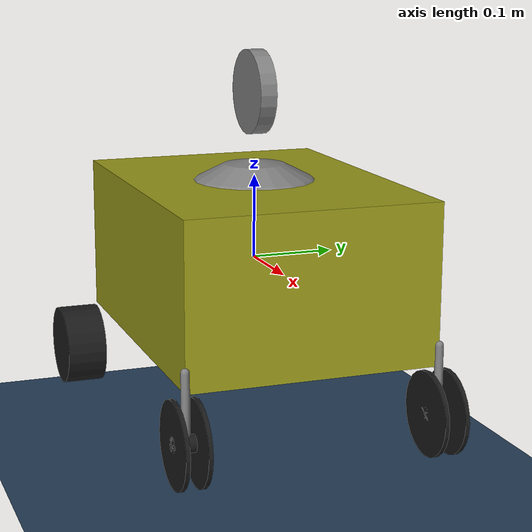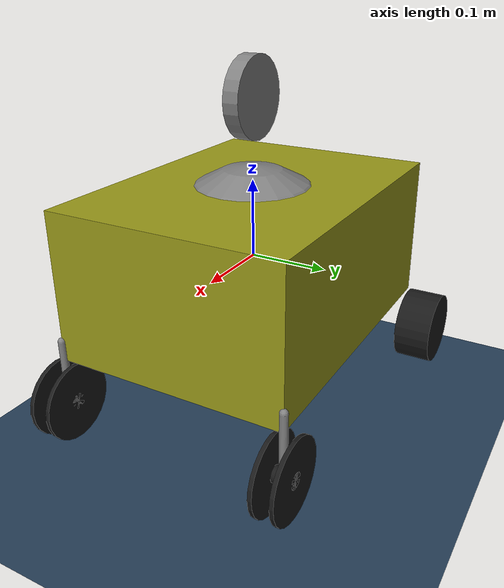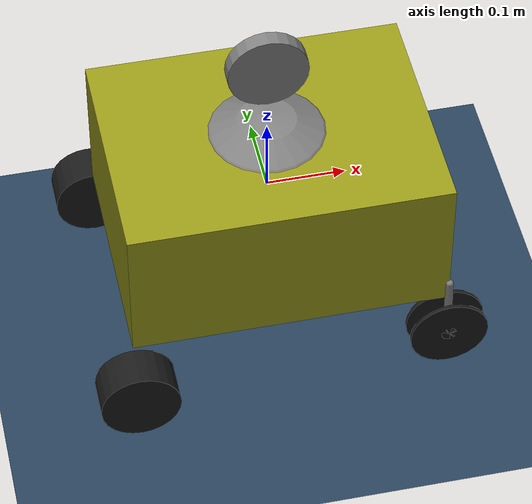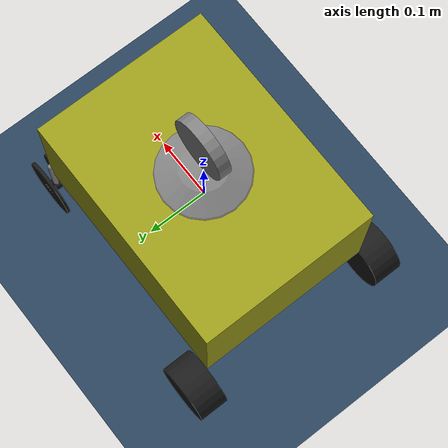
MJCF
<mujoco model="rover4We-field (v0.1)">

	<include file="rover4We-only.xml"/>

	<asset>
		<texture name="floor_tex" type="2d" builtin="checker" rgb1=".2 .3 .4" rgb2=".1 .2 .3" width="100" height="100" />
		<material name="floor_material" texture="floor_tex" texuniform="true" />
	</asset>

	<worldbody>
		<geom name="ground" type="plane" size="20 20 1" pos="0 0 -.25" material="floor_material"/>
	</worldbody>
</mujoco>

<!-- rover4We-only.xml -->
<mujoco model="rover4We (v0.2)">

    <compiler inertiafromgeom="true" angle="degree"/>
	<option	timestep="0.02" gravity="0 0 -9.81"/>

	<asset>
		<material name="MatWheel" specular="1" rgba=".1 .1 .1 1"/>
		<material name="MatBody" specular="1" rgba=".6 .6 .1 1"/>
	</asset>

	<default>
		<geom contype="1" conaffinity="1"/>
	</default>

	<default class="acker_solver_param">
		<equality solimp="0.9950 0.9990 0.0001" solref="0.0100 0.7500"/>
	</default>

    <worldbody>
		<body name="rover" pos="0 0 0">

			<light name="lamp" active="true" directional="true" cutoff="4" exponent="20" diffuse="1 1 1" specular="0 0 0" pos="0 0 2.5" dir="0 0 -1 "/>

			<joint name="centroid" type="free" pos="0 0 0"/>
            <geom name="rover-body" type="box" pos="0 0 0" size="0.2 0.15 .095" mass="12" material="MatBody"/>
            <site name="center-of-mass" pos="0 0 0" size=".12"/>
            <body name="r-l-wheel" pos="-0.2 0.15 -0.15">
                <joint name="r-l-drive-hinge" type="hinge" pos="0 0 0" axis="0 1 0" damping="0.01" />
                <geom type="cylinder" size=".05" fromto="0 0 0 0 0.05 0" mass=".125" material="MatWheel" condim="4"/>
            </body>
            <body name="r-r-wheel" pos="-0.2 -0.15 -0.15">
                <joint name="r-r-drive-hinge" type="hinge" pos="0 0 0" axis="0 1 0" damping="0.01"/>
                <geom type="cylinder" size=".05" fromto="0 0 0 0 -0.05 0" mass=".125" material="MatWheel" condim="4"/>
            </body>
			<body name="ghost-steer-wheel" pos="0 0 .2">
                <joint name="ghost-steer-hinge" type="hinge" pos="0 0 0" axis="0 0 1" limited="true" range="-17 17" damping="0"/>
				<geom type="cylinder" size=".05 .01" axisangle="1 0 0 90" contype="2" conaffinity="2" mass="0.002"/>
			</body>
			<body name="f-l-wheel" pos=".2 0.15 -.15">
				<geom type="capsule" size = ".005" fromto="0 0 0 0 0 .08" contype="2" conaffinity="2"/>
				<joint name="f-l-steer-hinge" type="hinge" pos="0 0 0" axis="0 0 1" damping="0.01" limited="true" range="-40 40"/>
				<body>
					<geom type="cylinder" size=".01" fromto="0 -.015 0 0 0.015 0" mass=".125" material="MatWheel"/>
					<body>
						<joint name="f-l-drive-hinge-1" type="hinge" pos="0 0 0" axis="0 1 0" damping="0.01"/>
						<geom type="cylinder" size=".05" fromto="0 -.015 0 0 -0.010 0" mass=".125" material="MatWheel" condim="4"/>
					</body>
					<body>
						<joint name="f-l-drive-hinge-2" type="hinge" pos="0 0 0" axis="0 1 0" damping="0.01"/>
						<geom type="cylinder" size=".05" fromto="0 .010 0 0 0.015 0" mass=".125" material="MatWheel" condim="4"/>
					</body>
				</body>
			</body>
			<body name="f-r-wheel" pos=".2 -0.15 -.15">
				<geom type="capsule" size = ".005" fromto="0 0 0 0 0 .08" contype="2" conaffinity="2"/>
				<joint name="f-r-steer-hinge" type="hinge" pos="0 0 0" axis="0 0 1" damping="0.01" limited="true" range="-40 40"/>

				<body>
					<geom type="cylinder" size=".01" fromto="0 -.015 0 0 0.015 0" mass=".125" material="MatWheel"/>
					<body>
						<joint name="f-l-drive-hinge-3" type="hinge" pos="0 0 0" axis="0 1 0" damping="0.01"/>
						<geom type="cylinder" size=".05" fromto="0 -.015 0 0 -0.010 0" mass=".125" material="MatWheel" condim="4"/>
					</body>
					<body>
						<joint name="f-l-drive-hinge-4" type="hinge" pos="0 0 0" axis="0 1 0" damping="0.01"/>
						<geom type="cylinder" size=".05" fromto="0 .010 0 0 0.015 0" mass=".125" material="MatWheel" condim="4"/>
					</body>
				</body>
			</body>

        </body>
    </worldbody>

    <sensor>
      <framepos objtype="site" objname="center-of-mass" />
   </sensor>

	<tendon>
		<fixed name="rear-differential">
			<joint joint="r-l-drive-hinge" coef="1"/>
			<joint joint="r-r-drive-hinge" coef="1"/>
		</fixed>
	</tendon>

    <actuator>
        <position name="steer" joint="ghost-steer-hinge" ctrllimited="true" ctrlrange="-.29 .29" gear="1"/>
        <motor name="drive" tendon="rear-differential" ctrllimited="true" ctrlrange="-1.0 1.0" gear="1.5"/>
    </actuator>

	<equality>
		<joint name="f-l-steer-hinge" joint1="f-l-steer-hinge" joint2="ghost-steer-hinge" polycoef="0.000093610018132620019 2.0041497325730204 1.4716131190668178 -1.0929725380842041 -3.2252012765547819" class="acker_solver_param"/>
		<joint name="f-r-steer-hinge" joint1="f-r-steer-hinge" joint2="ghost-steer-hinge" polycoef="-0.00017013070152971507 2.0039379507086514 -1.4684576386267671 -1.0901354124362155 3.1974185558159771" class="acker_solver_param"/>
	</equality>

</mujoco>
